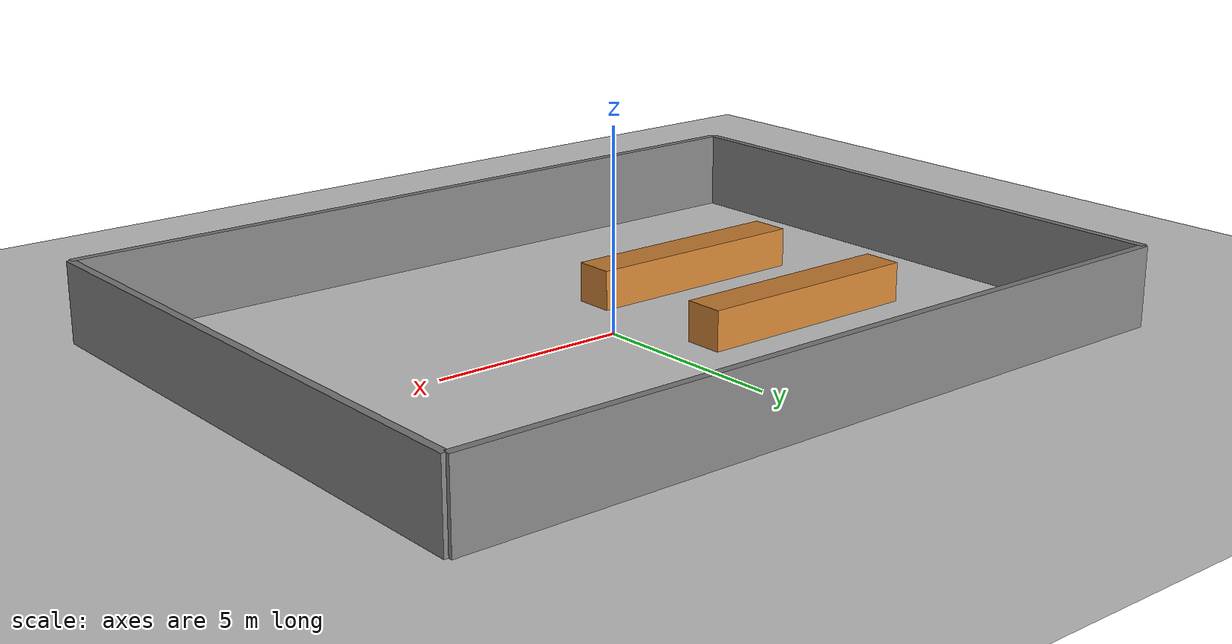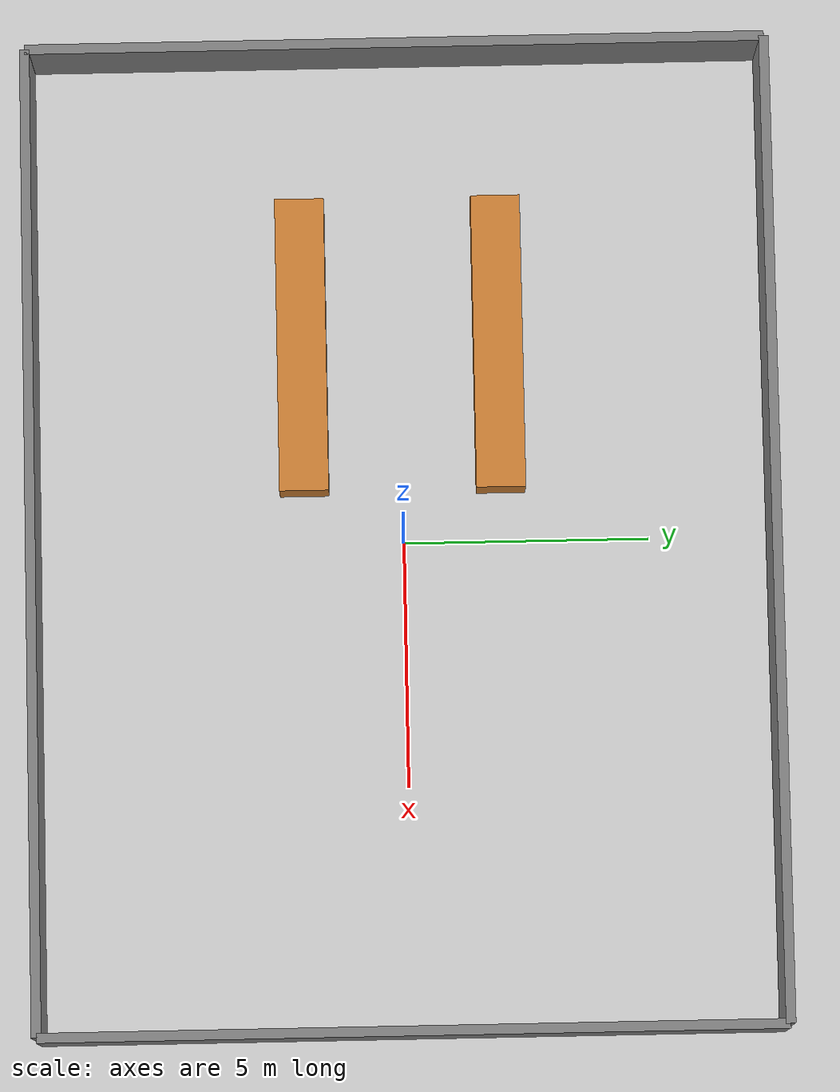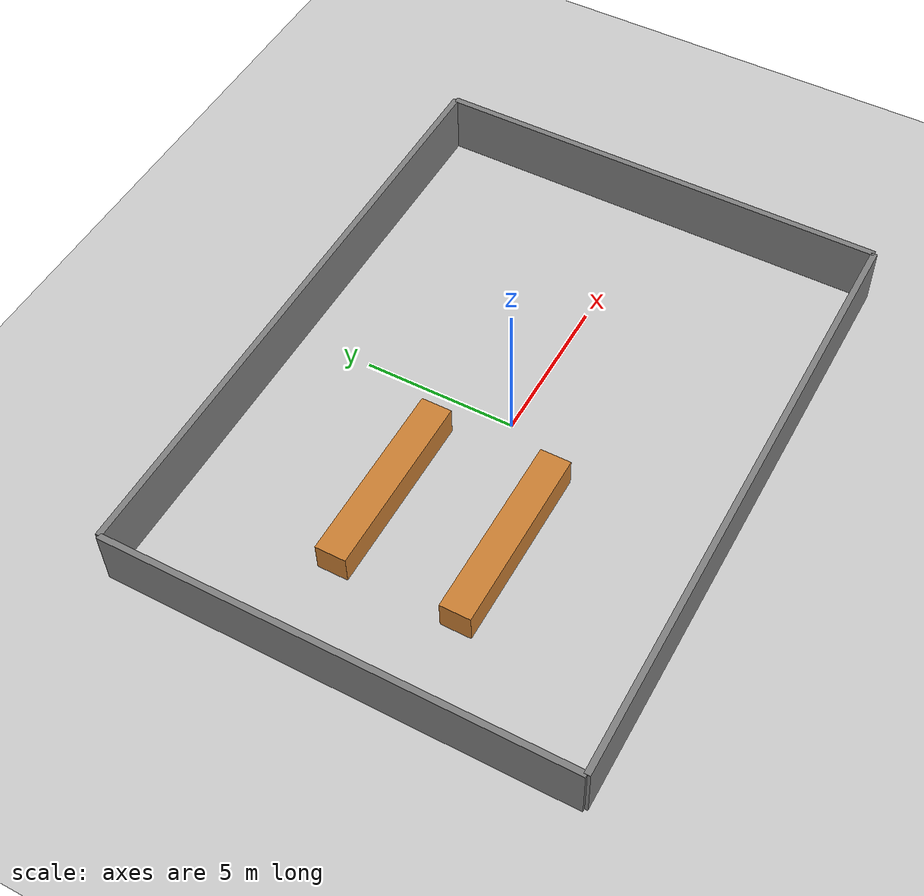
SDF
<?xml version="1.0" ?>
<sdf version="1.9">
  <world name="warehouse">
    <physics name="1ms" type="ignored">
      <max_step_size>0.001</max_step_size>
      <real_time_factor>1.0</real_time_factor>
    </physics>
    <plugin filename="libignition-gazebo-physics-system.so" name="ignition::gazebo::systems::Physics"></plugin>
    <plugin filename="libignition-gazebo-user-commands-system.so" name="ignition::gazebo::systems::UserCommands"></plugin>
    <plugin filename="libignition-gazebo-scene-broadcaster-system.so" name="ignition::gazebo::systems::SceneBroadcaster"></plugin>
    <plugin filename="libignition-gazebo-sensors-system.so" name="ignition::gazebo::systems::Sensors">
      <render_engine>ogre2</render_engine>
    </plugin>
    <!-- Güneş Işığı -->
    <light type="directional" name="sun">
      <cast_shadows>true</cast_shadows>
      <pose>0 0 10 0 0 0</pose>
      <diffuse>0.8 0.8 0.8 1</diffuse>
      <specular>0.2 0.2 0.2 1</specular>
      <direction>-0.5 0.1 -0.9</direction>
    </light>
    <!-- Zemin -->
    <model name="ground_plane">
      <static>true</static>
      <pose>0 0 0 0 0 0</pose>
      <link name="link">
        <collision name="collision">
          <geometry>
            <plane>
              <normal>0 0 1</normal>
              <size>20 15</size>
            </plane>
          </geometry>
          <surface>
            <friction>
              <ode>
                <mu>1.0</mu>
                <mu2>1.0</mu2>
              </ode>
            </friction>
          </surface>
        </collision>
        <visual name="visual">
          <geometry>
            <plane>
              <normal>0 0 1</normal>
              <size>20 15</size>
            </plane>
          </geometry>
          <material>
            <ambient>0.8 0.8 0.8 1</ambient>
            <diffuse>0.8 0.8 0.8 1</diffuse>
          </material>
        </visual>
      </link>
    </model>
    <!-- 1. DIŞ DUVARLAR -->
    <model name="wall_north">
      <static>true</static>
      <pose>0 7.5 1 0 0 0</pose>
      <link name="link">
        <collision name="collision">
          <geometry>
            <box>
              <size>20 0.2 2</size>
            </box>
          </geometry>
        </collision>
        <visual name="visual">
          <geometry>
            <box>
              <size>20 0.2 2</size>
            </box>
          </geometry>
          <material>
            <ambient>0.5 0.5 0.5 1</ambient>
          </material>
        </visual>
      </link>
    </model>
    <model name="wall_south">
      <static>true</static>
      <pose>0 -7.5 1 0 0 0</pose>
      <link name="link">
        <collision name="collision">
          <geometry>
            <box>
              <size>20 0.2 2</size>
            </box>
          </geometry>
        </collision>
        <visual name="visual">
          <geometry>
            <box>
              <size>20 0.2 2</size>
            </box>
          </geometry>
          <material>
            <ambient>0.5 0.5 0.5 1</ambient>
          </material>
        </visual>
      </link>
    </model>
    <model name="wall_east">
      <static>true</static>
      <pose>10 0 1 0 0 0</pose>
      <link name="link">
        <collision name="collision">
          <geometry>
            <box>
              <size>0.2 15 2</size>
            </box>
          </geometry>
        </collision>
        <visual name="visual">
          <geometry>
            <box>
              <size>0.2 15 2</size>
            </box>
          </geometry>
          <material>
            <ambient>0.5 0.5 0.5 1</ambient>
          </material>
        </visual>
      </link>
    </model>
    <model name="wall_west">
      <static>true</static>
      <pose>-10 0 1 0 0 0</pose>
      <link name="link">
        <collision name="collision">
          <geometry>
            <box>
              <size>0.2 15 2</size>
            </box>
          </geometry>
        </collision>
        <visual name="visual">
          <geometry>
            <box>
              <size>0.2 15 2</size>
            </box>
          </geometry>
          <material>
            <ambient>0.5 0.5 0.5 1</ambient>
          </material>
        </visual>
      </link>
    </model>
    <!-- 2. DEPO RAFLARI (Sadece Raflar) -->
    <model name="shelf_1">
      <static>true</static>
      <pose>-4 2 0.5 0 0 0</pose>
      <link name="link">
        <collision name="collision">
          <geometry>
            <box>
              <size>6 1 1</size>
            </box>
          </geometry>
        </collision>
        <visual name="visual">
          <geometry>
            <box>
              <size>6 1 1</size>
            </box>
          </geometry>
          <material>
            <ambient>0.8 0.5 0.2 1</ambient>
          </material>
        </visual>
      </link>
    </model>
    <model name="shelf_2">
      <static>true</static>
      <pose>-4 -2 0.5 0 0 0</pose>
      <link name="link">
        <collision name="collision">
          <geometry>
            <box>
              <size>6 1 1</size>
            </box>
          </geometry>
        </collision>
        <visual name="visual">
          <geometry>
            <box>
              <size>6 1 1</size>
            </box>
          </geometry>
          <material>
            <ambient>0.8 0.5 0.2 1</ambient>
          </material>
        </visual>
      </link>
    </model>
  </world>
</sdf>
